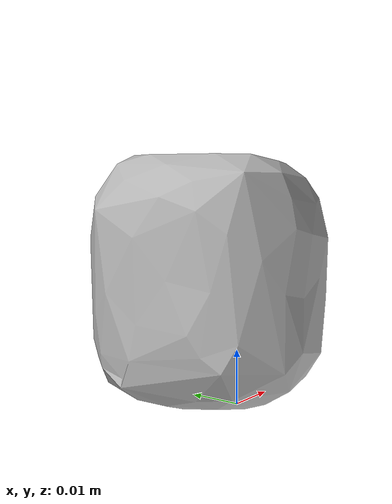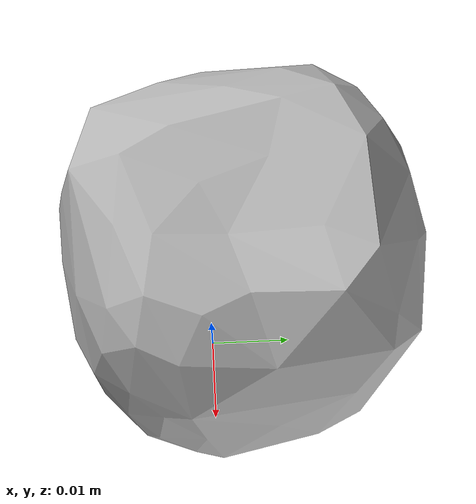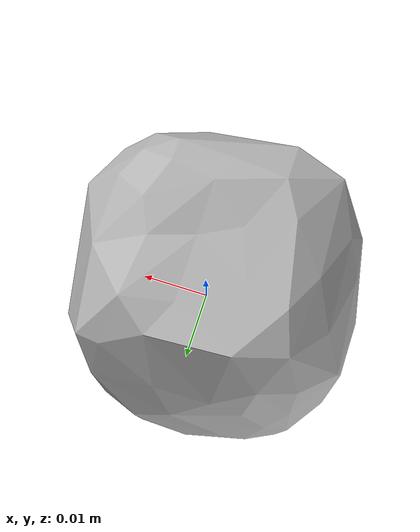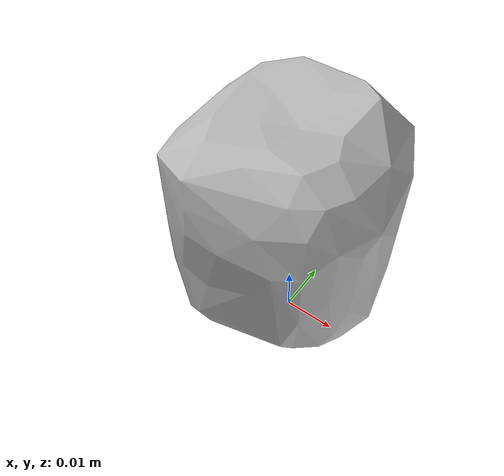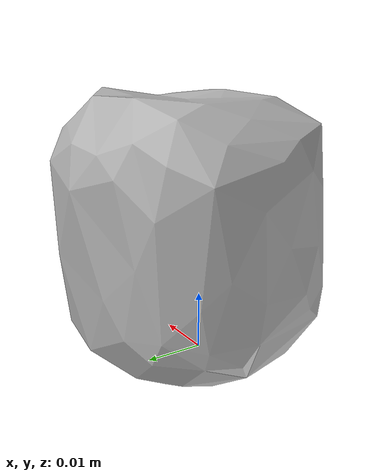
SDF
<?xml version='1.0'?>
<sdf version="1.4">
  <model name="073-j_lego_duplo">
    <static>false</static>
    <link name="link">
      <inertial>
        <pose>-0.003070290716140241 0.0037956688289895037 0.023436802808659212 0.028256152439815958 -0.09110938218320203 -2.391765376854232</pose>
        <mass>0.005006075445730399</mass>
        <inertia>
          <ixx>1.1246286525285832e-06</ixx>
          <ixy>2.2357827620989833e-22</ixy>
          <ixz>2.243162042193451e-22</ixz>
          <iyy>1.1141249921679534e-06</iyy>
          <iyz>1.9791081333127623e-22</iyz>
          <izz>9.739631257310058e-07</izz>
        </inertia>
      </inertial>
      <collision name="collision">
        <geometry>
          <mesh>
            <!-- Use a downsampled mesh for collisions -->
            <uri>model:///073-j_lego_duplo/073-j_lego_duplo_250_collision.stl</uri>
	        </mesh>
        </geometry>
        <surface>
      </surface>
      </collision>
      <visual name="visual">
        <geometry>
          <mesh>
            <uri>model:///073-j_lego_duplo/textured.obj</uri>
	        </mesh>
        </geometry>
        <material>
          <script>
            <uri>model:///073-j_lego_duplo/073-j_lego_duplo.material</uri>
            <name>073-j_lego_duplo</name>
          </script>
        </material>
      </visual>
    </link>
  </model>
</sdf>
